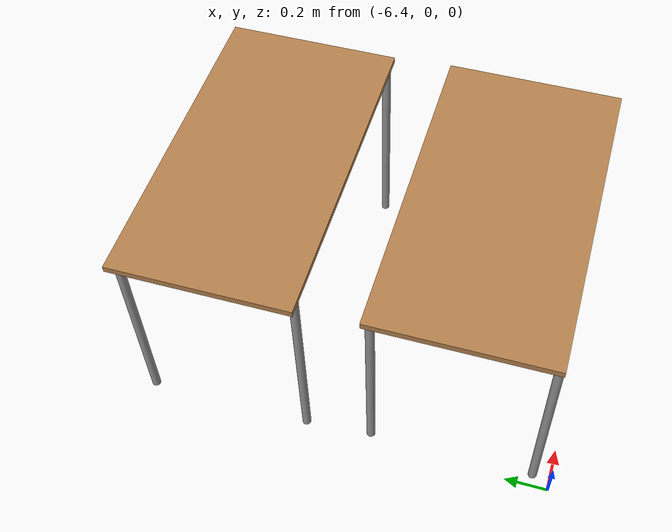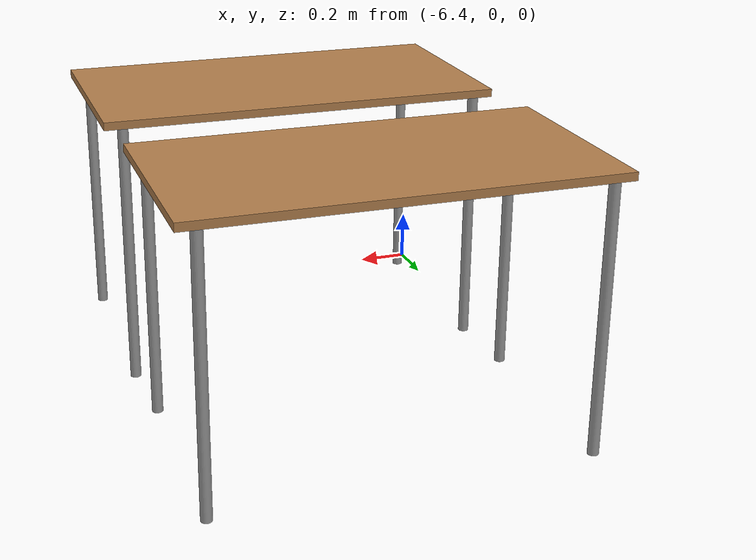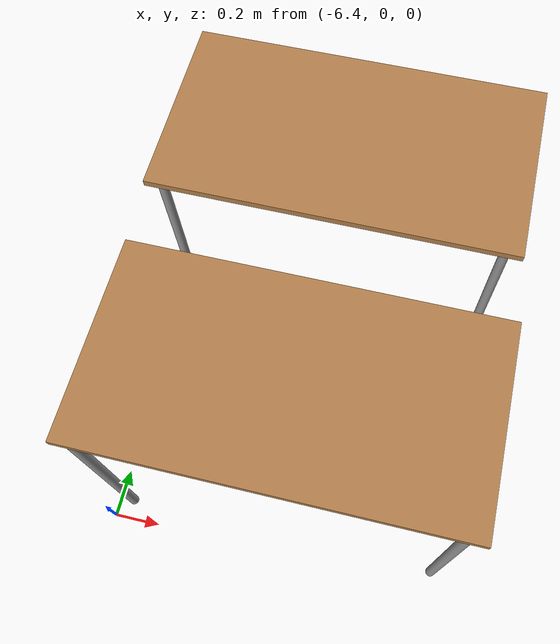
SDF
<sdf version="1.7">
 <world name="default">
  <gravity>0 0 -9.8</gravity>
  <physics name="default_physics" default="0" type="ode">
   <max_step_size>0.001</max_step_size>
   <real_time_factor>1</real_time_factor>
   <real_time_update_rate>1000</real_time_update_rate>
  </physics>
  <light name="Warehouse_CeilingLight_003" type="point">
   <pose>0 0 9 0 -0 0</pose>
   <diffuse>0.5 0.5 0.5 1</diffuse>
   <specular>0.2 0.2 0.2 1</specular>
   <attenuation>
    <range>80</range>
    <constant>0.3</constant>
    <linear>0.01</linear>
    <quadratic>0.001</quadratic>
   </attenuation>
   <direction>0.1 0.1 -1</direction>
   <spot><inner_angle>0</inner_angle><outer_angle>0</outer_angle><falloff>0</falloff></spot>
  </light>
  <magnetic_field>6e-06 2.3e-05 -4.2e-05</magnetic_field>
  <atmosphere type="adiabatic"/>
  <scene><ambient>0.4 0.4 0.4 1</ambient><background>0.7 0.7 0.7 1</background><shadows>1</shadows></scene>
  <spherical_coordinates>
   <surface_model>EARTH_WGS84</surface_model>
   <latitude_deg>0</latitude_deg>
   <longitude_deg>0</longitude_deg>
   <elevation>0</elevation>
   <heading_deg>0</heading_deg>
  </spherical_coordinates>
  <light name="user_directional_light_0" type="directional">
   <pose>0.00905 -0.00479 1 0 -0 0</pose>
   <diffuse>0.5 0.5 0.5 1</diffuse>
   <specular>0.1 0.1 0.1 1</specular>
   <direction>0.1 0.1 -0.9</direction>
   <attenuation>
    <range>20</range>
    <constant>0.5</constant>
    <linear>0.01</linear>
    <quadratic>0.001</quadratic>
   </attenuation>
   <spot><inner_angle>0</inner_angle><outer_angle>0</outer_angle><falloff>0</falloff></spot>
  </light>
  <light name="user_directional_light_1" type="directional">
   <pose>0.024551 -0.025394 1 0 -0 0</pose>
   <diffuse>0.5 0.5 0.5 1</diffuse>
   <specular>0.1 0.1 0.1 1</specular>
   <direction>0.1 0.1 -0.9</direction>
   <attenuation>
    <range>20</range>
    <constant>0.5</constant>
    <linear>0.01</linear>
    <quadratic>0.001</quadratic>
   </attenuation>
   <spot><inner_angle>0</inner_angle><outer_angle>0</outer_angle><falloff>0</falloff></spot>
  </light>
  <light name="user_directional_light_2" type="directional">
   <pose>0.00901 0.02091 1 0 -0 0</pose>
   <diffuse>0.5 0.5 0.5 1</diffuse>
   <specular>0.1 0.1 0.1 1</specular>
   <direction>0.1 0.1 -0.9</direction>
   <attenuation>
    <range>20</range>
    <constant>0.5</constant>
    <linear>0.01</linear>
    <quadratic>0.001</quadratic>
   </attenuation>
   <spot><inner_angle>0</inner_angle><outer_angle>0</outer_angle><falloff>0</falloff></spot>
  </light>
  <light name="user_directional_light_3" type="directional">
   <pose>-0.006412 -0.009892 1 0 -0 0</pose>
   <diffuse>0.5 0.5 0.5 1</diffuse>
   <specular>0.1 0.1 0.1 1</specular>
   <direction>0.1 0.1 -0.9</direction>
   <attenuation>
    <range>20</range>
    <constant>0.5</constant>
    <linear>0.01</linear>
    <quadratic>0.001</quadratic>
   </attenuation>
   <spot><inner_angle>0</inner_angle><outer_angle>0</outer_angle><falloff>0</falloff></spot>
  </light>
  <light name="user_directional_light_4" type="directional">
   <pose>-0.00127 0.000377 1 0 -0 0</pose>
   <diffuse>0.5 0.5 0.5 1</diffuse>
   <specular>0.1 0.1 0.1 1</specular>
   <direction>0.1 0.1 -0.9</direction>
   <attenuation>
    <range>20</range>
    <constant>0.5</constant>
    <linear>0.01</linear>
    <quadratic>0.001</quadratic>
   </attenuation>
   <spot><inner_angle>0</inner_angle><outer_angle>0</outer_angle><falloff>0</falloff></spot>
  </light>
  <model name="table">
   <static>1</static>
   <link name="link">
    <collision name="surface">
     <pose>0 0 1 0 -0 0</pose>
     <geometry><box><size>1.5 0.8 0.03</size></box></geometry>
     <surface><friction><ode><mu>0.6</mu><mu2>0.6</mu2></ode></friction></surface>
    </collision>
    <visual name="visual1">
     <pose>0 0 1 0 -0 0</pose>
     <geometry><box><size>1.5 0.8 0.03</size></box></geometry>
     <material>
      <script><uri>file://media/materials/scripts/gazebo.material</uri><name>Gazebo/Wood</name></script>
     </material>
    </visual>
    <collision name="front_left_leg">
     <pose>0.68 0.38 0.5 0 -0 0</pose>
     <geometry><cylinder><radius>0.02</radius><length>1</length></cylinder></geometry>
    </collision>
    <visual name="front_left_leg">
     <pose>0.68 0.38 0.5 0 -0 0</pose>
     <geometry><cylinder><radius>0.02</radius><length>1</length></cylinder></geometry>
     <material>
      <script><uri>file://media/materials/scripts/gazebo.material</uri><name>Gazebo/Grey</name></script>
     </material>
    </visual>
    <collision name="front_right_leg">
     <pose>0.68 -0.38 0.5 0 -0 0</pose>
     <geometry><cylinder><radius>0.02</radius><length>1</length></cylinder></geometry>
    </collision>
    <visual name="front_right_leg">
     <pose>0.68 -0.38 0.5 0 -0 0</pose>
     <geometry><cylinder><radius>0.02</radius><length>1</length></cylinder></geometry>
     <material>
      <script><uri>file://media/materials/scripts/gazebo.material</uri><name>Gazebo/Grey</name></script>
     </material>
    </visual>
    <collision name="back_right_leg">
     <pose>-0.68 -0.38 0.5 0 -0 0</pose>
     <geometry><cylinder><radius>0.02</radius><length>1</length></cylinder></geometry>
    </collision>
    <visual name="back_right_leg">
     <pose>-0.68 -0.38 0.5 0 -0 0</pose>
     <geometry><cylinder><radius>0.02</radius><length>1</length></cylinder></geometry>
     <material>
      <script><uri>file://media/materials/scripts/gazebo.material</uri><name>Gazebo/Grey</name></script>
     </material>
    </visual>
    <collision name="back_left_leg">
     <pose>-0.68 0.38 0.5 0 -0 0</pose>
     <geometry><cylinder><radius>0.02</radius><length>1</length></cylinder></geometry>
    </collision>
    <visual name="back_left_leg">
     <pose>-0.68 0.38 0.5 0 -0 0</pose>
     <geometry><cylinder><radius>0.02</radius><length>1</length></cylinder></geometry>
     <material>
      <script><uri>file://media/materials/scripts/gazebo.material</uri><name>Gazebo/Grey</name></script>
     </material>
    </visual>
   </link>
   <pose>-5.66286 0.460786 0 0 -0 0</pose>
  </model>
  <model name="table_clone">
   <static>1</static>
   <link name="link">
    <collision name="surface">
     <pose>0 0 1 0 -0 0</pose>
     <geometry><box><size>1.5 0.8 0.03</size></box></geometry>
     <surface><friction><ode><mu>0.6</mu><mu2>0.6</mu2></ode></friction></surface>
    </collision>
    <visual name="visual1">
     <pose>0 0 1 0 -0 0</pose>
     <geometry><box><size>1.5 0.8 0.03</size></box></geometry>
     <material>
      <script><uri>file://media/materials/scripts/gazebo.material</uri><name>Gazebo/Wood</name></script>
     </material>
    </visual>
    <collision name="front_left_leg">
     <pose>0.68 0.38 0.5 0 -0 0</pose>
     <geometry><cylinder><radius>0.02</radius><length>1</length></cylinder></geometry>
    </collision>
    <visual name="front_left_leg">
     <pose>0.68 0.38 0.5 0 -0 0</pose>
     <geometry><cylinder><radius>0.02</radius><length>1</length></cylinder></geometry>
     <material>
      <script><uri>file://media/materials/scripts/gazebo.material</uri><name>Gazebo/Grey</name></script>
     </material>
    </visual>
    <collision name="front_right_leg">
     <pose>0.68 -0.38 0.5 0 -0 0</pose>
     <geometry><cylinder><radius>0.02</radius><length>1</length></cylinder></geometry>
    </collision>
    <visual name="front_right_leg">
     <pose>0.68 -0.38 0.5 0 -0 0</pose>
     <geometry><cylinder><radius>0.02</radius><length>1</length></cylinder></geometry>
     <material>
      <script><uri>file://media/materials/scripts/gazebo.material</uri><name>Gazebo/Grey</name></script>
     </material>
    </visual>
    <collision name="back_right_leg">
     <pose>-0.68 -0.38 0.5 0 -0 0</pose>
     <geometry><cylinder><radius>0.02</radius><length>1</length></cylinder></geometry>
    </collision>
    <visual name="back_right_leg">
     <pose>-0.68 -0.38 0.5 0 -0 0</pose>
     <geometry><cylinder><radius>0.02</radius><length>1</length></cylinder></geometry>
     <material>
      <script><uri>file://media/materials/scripts/gazebo.material</uri><name>Gazebo/Grey</name></script>
     </material>
    </visual>
    <collision name="back_left_leg">
     <pose>-0.68 0.38 0.5 0 -0 0</pose>
     <geometry><cylinder><radius>0.02</radius><length>1</length></cylinder></geometry>
    </collision>
    <visual name="back_left_leg">
     <pose>-0.68 0.38 0.5 0 -0 0</pose>
     <geometry><cylinder><radius>0.02</radius><length>1</length></cylinder></geometry>
     <material>
      <script><uri>file://media/materials/scripts/gazebo.material</uri><name>Gazebo/Grey</name></script>
     </material>
    </visual>
   </link>
   <pose>-5.68458 1.52666 0 0 -0 0</pose>
  </model>
 </world>
</sdf>
